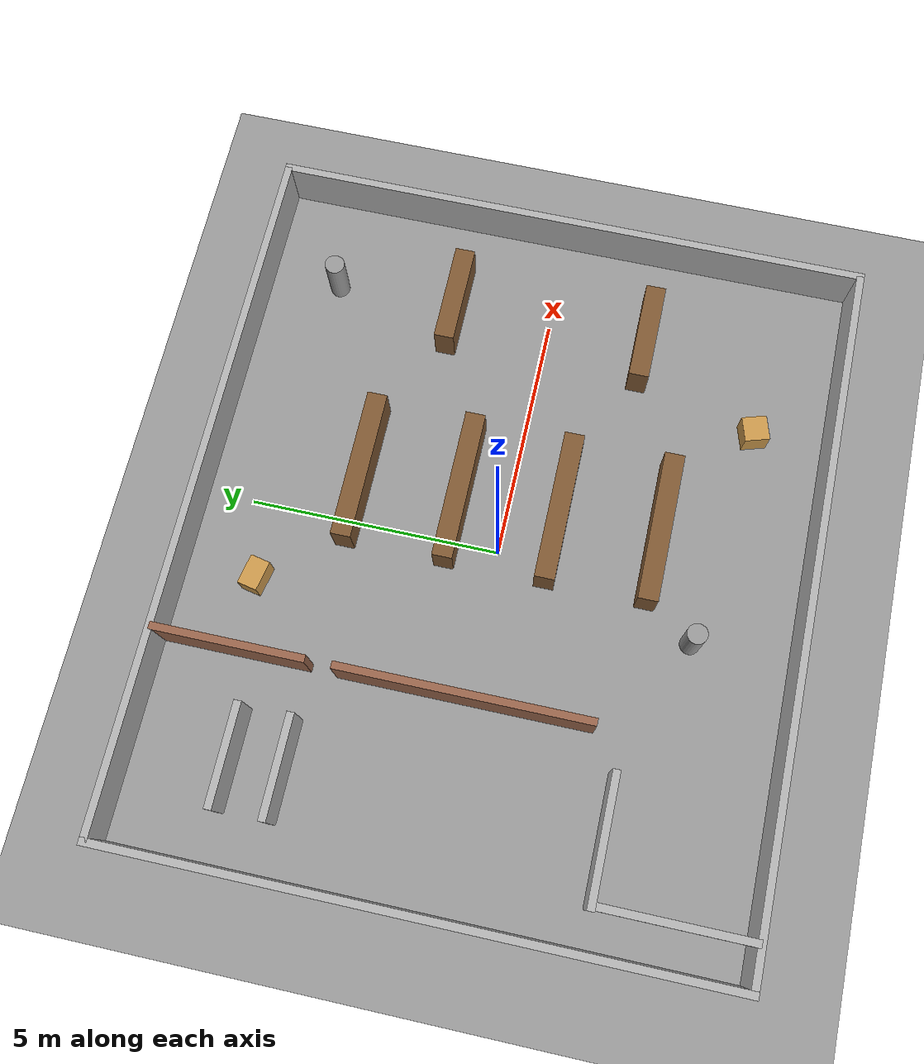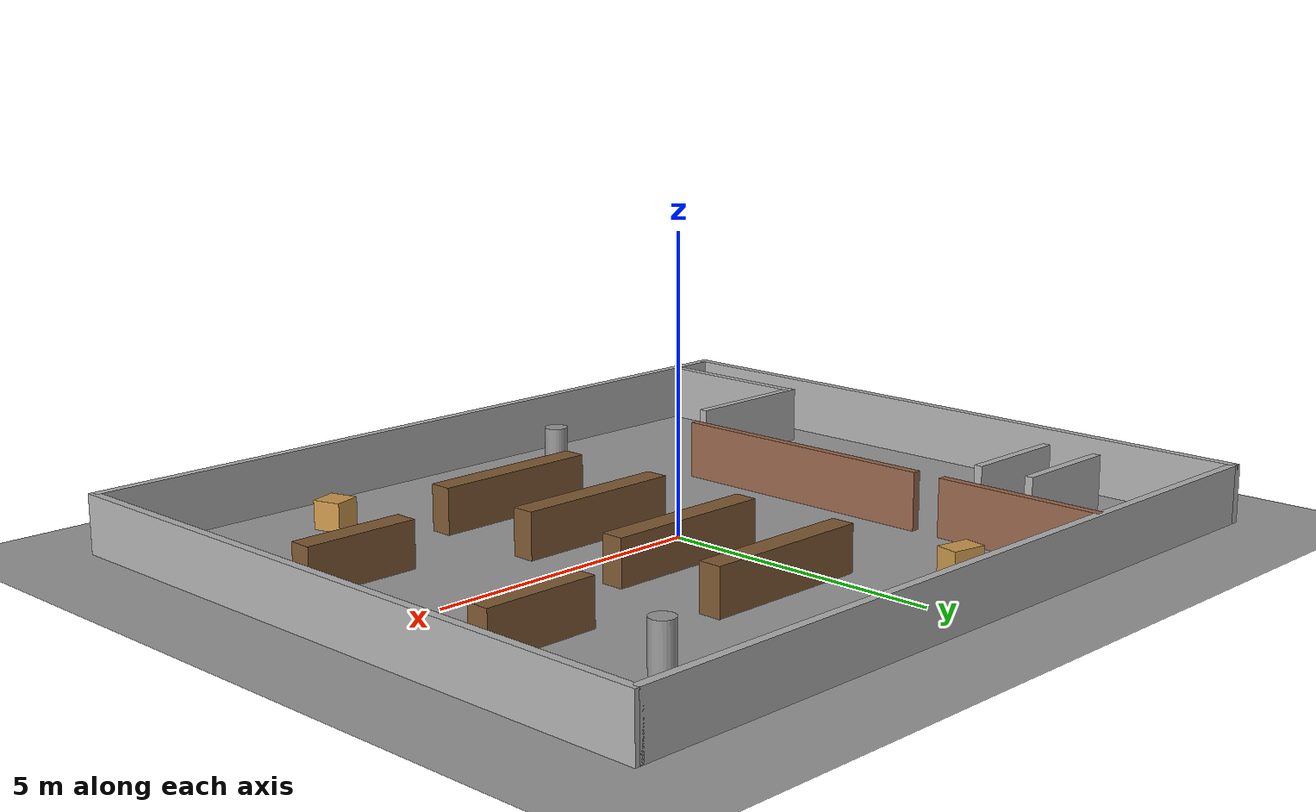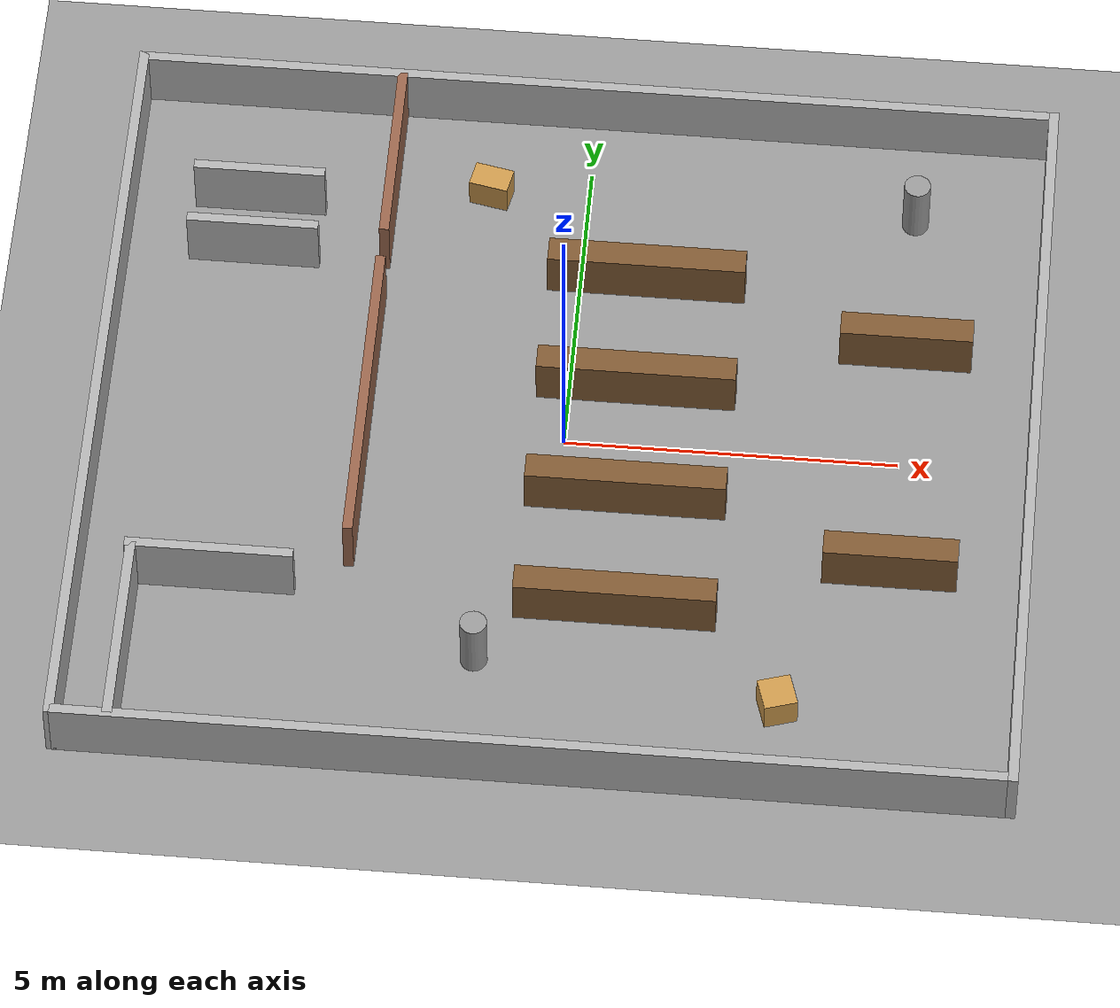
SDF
<?xml version="1.0" ?>
<sdf version="1.9">
  <world name="warehouse">
    <physics name="1ms" type="ignored">
      <max_step_size>0.001</max_step_size>
      <real_time_factor>1.0</real_time_factor>
    </physics>

    <plugin filename="gz-sim-physics-system" name="gz::sim::systems::Physics"/>
    <plugin filename="gz-sim-sensors-system" name="gz::sim::systems::Sensors">
      <render_engine>ogre2</render_engine>
    </plugin>
    <plugin filename="gz-sim-scene-broadcaster-system" name="gz::sim::systems::SceneBroadcaster"/>
    <plugin filename="gz-sim-user-commands-system" name="gz::sim::systems::UserCommands"/>
    <!-- Required for the TurtleBot3 IMU sensor to publish -->
    <plugin filename="gz-sim-imu-system" name="gz::sim::systems::Imu"/>

    <light type="directional" name="sun">
      <cast_shadows>true</cast_shadows>
      <pose>0 0 10 0 0 0</pose>
      <diffuse>0.8 0.8 0.8 1</diffuse>
      <specular>0.2 0.2 0.2 1</specular>
      <attenuation>
        <range>1000</range>
        <constant>0.9</constant>
        <linear>0.01</linear>
        <quadratic>0.001</quadratic>
      </attenuation>
      <direction>-0.5 0.1 -0.9</direction>
    </light>

    <!-- Ground plane -->
    <model name="ground_plane">
      <static>true</static>
      <link name="link">
        <collision name="collision">
          <geometry>
            <plane><normal>0 0 1</normal><size>100 100</size></plane>
          </geometry>
        </collision>
        <visual name="visual">
          <geometry>
            <plane><normal>0 0 1</normal><size>100 100</size></plane>
          </geometry>
          <material>
            <ambient>0.6 0.6 0.6 1</ambient>
            <diffuse>0.6 0.6 0.6 1</diffuse>
          </material>
        </visual>
      </link>
    </model>

    <!-- ==================== OUTER WALLS ==================== -->
    <!-- North wall -->
    <model name="wall_north">
      <static>true</static>
      <pose>0 6 0.5 0 0 0</pose>
      <link name="link">
        <collision name="collision">
          <geometry><box><size>14 0.15 1</size></box></geometry>
        </collision>
        <visual name="visual">
          <geometry><box><size>14 0.15 1</size></box></geometry>
          <material>
            <ambient>0.5 0.5 0.5 1</ambient>
            <diffuse>0.7 0.7 0.7 1</diffuse>
          </material>
        </visual>
      </link>
    </model>

    <!-- South wall -->
    <model name="wall_south">
      <static>true</static>
      <pose>0 -6 0.5 0 0 0</pose>
      <link name="link">
        <collision name="collision">
          <geometry><box><size>14 0.15 1</size></box></geometry>
        </collision>
        <visual name="visual">
          <geometry><box><size>14 0.15 1</size></box></geometry>
          <material>
            <ambient>0.5 0.5 0.5 1</ambient>
            <diffuse>0.7 0.7 0.7 1</diffuse>
          </material>
        </visual>
      </link>
    </model>

    <!-- East wall -->
    <model name="wall_east">
      <static>true</static>
      <pose>7 0 0.5 0 0 0</pose>
      <link name="link">
        <collision name="collision">
          <geometry><box><size>0.15 12.15 1</size></box></geometry>
        </collision>
        <visual name="visual">
          <geometry><box><size>0.15 12.15 1</size></box></geometry>
          <material>
            <ambient>0.5 0.5 0.5 1</ambient>
            <diffuse>0.7 0.7 0.7 1</diffuse>
          </material>
        </visual>
      </link>
    </model>

    <!-- West wall -->
    <model name="wall_west">
      <static>true</static>
      <pose>-7 0 0.5 0 0 0</pose>
      <link name="link">
        <collision name="collision">
          <geometry><box><size>0.15 12.15 1</size></box></geometry>
        </collision>
        <visual name="visual">
          <geometry><box><size>0.15 12.15 1</size></box></geometry>
          <material>
            <ambient>0.5 0.5 0.5 1</ambient>
            <diffuse>0.7 0.7 0.7 1</diffuse>
          </material>
        </visual>
      </link>
    </model>

    <!-- ==================== INTERIOR WALLS / ROOMS ==================== -->
    <!-- Divider wall creating two zones (with doorway gap) -->
    <model name="divider_left">
      <static>true</static>
      <pose>-3 0 0.5 0 0 0</pose>
      <link name="link">
        <collision name="collision">
          <geometry><box><size>0.15 5 1</size></box></geometry>
        </collision>
        <visual name="visual">
          <geometry><box><size>0.15 5 1</size></box></geometry>
          <material>
            <ambient>0.4 0.3 0.2 1</ambient>
            <diffuse>0.6 0.4 0.3 1</diffuse>
          </material>
        </visual>
      </link>
    </model>

    <!-- Upper section of divider (leaving 1.5m doorway) -->
    <model name="divider_upper">
      <static>true</static>
      <pose>-3 4.5 0.5 0 0 0</pose>
      <link name="link">
        <collision name="collision">
          <geometry><box><size>0.15 3 1</size></box></geometry>
        </collision>
        <visual name="visual">
          <geometry><box><size>0.15 3 1</size></box></geometry>
          <material>
            <ambient>0.4 0.3 0.2 1</ambient>
            <diffuse>0.6 0.4 0.3 1</diffuse>
          </material>
        </visual>
      </link>
    </model>

    <!-- ==================== SHELVING UNITS (AISLES) ==================== -->
    <!-- Shelf row 1 -->
    <model name="shelf_1a">
      <static>true</static>
      <pose>1 -3 0.4 0 0 0</pose>
      <link name="link">
        <collision name="collision">
          <geometry><box><size>3 0.4 0.8</size></box></geometry>
        </collision>
        <visual name="visual">
          <geometry><box><size>3 0.4 0.8</size></box></geometry>
          <material>
            <ambient>0.3 0.2 0.1 1</ambient>
            <diffuse>0.5 0.35 0.2 1</diffuse>
          </material>
        </visual>
      </link>
    </model>

    <!-- Shelf row 2 -->
    <model name="shelf_2a">
      <static>true</static>
      <pose>1 -1 0.4 0 0 0</pose>
      <link name="link">
        <collision name="collision">
          <geometry><box><size>3 0.4 0.8</size></box></geometry>
        </collision>
        <visual name="visual">
          <geometry><box><size>3 0.4 0.8</size></box></geometry>
          <material>
            <ambient>0.3 0.2 0.1 1</ambient>
            <diffuse>0.5 0.35 0.2 1</diffuse>
          </material>
        </visual>
      </link>
    </model>

    <!-- Shelf row 3 -->
    <model name="shelf_3a">
      <static>true</static>
      <pose>1 1 0.4 0 0 0</pose>
      <link name="link">
        <collision name="collision">
          <geometry><box><size>3 0.4 0.8</size></box></geometry>
        </collision>
        <visual name="visual">
          <geometry><box><size>3 0.4 0.8</size></box></geometry>
          <material>
            <ambient>0.3 0.2 0.1 1</ambient>
            <diffuse>0.5 0.35 0.2 1</diffuse>
          </material>
        </visual>
      </link>
    </model>

    <!-- Shelf row 4 -->
    <model name="shelf_4a">
      <static>true</static>
      <pose>1 3 0.4 0 0 0</pose>
      <link name="link">
        <collision name="collision">
          <geometry><box><size>3 0.4 0.8</size></box></geometry>
        </collision>
        <visual name="visual">
          <geometry><box><size>3 0.4 0.8</size></box></geometry>
          <material>
            <ambient>0.3 0.2 0.1 1</ambient>
            <diffuse>0.5 0.35 0.2 1</diffuse>
          </material>
        </visual>
      </link>
    </model>

    <!-- Right-side shelves (second column) -->
    <model name="shelf_5a">
      <static>true</static>
      <pose>5 -2 0.4 0 0 0</pose>
      <link name="link">
        <collision name="collision">
          <geometry><box><size>2 0.4 0.8</size></box></geometry>
        </collision>
        <visual name="visual">
          <geometry><box><size>2 0.4 0.8</size></box></geometry>
          <material>
            <ambient>0.3 0.2 0.1 1</ambient>
            <diffuse>0.5 0.35 0.2 1</diffuse>
          </material>
        </visual>
      </link>
    </model>

    <model name="shelf_6a">
      <static>true</static>
      <pose>5 2 0.4 0 0 0</pose>
      <link name="link">
        <collision name="collision">
          <geometry><box><size>2 0.4 0.8</size></box></geometry>
        </collision>
        <visual name="visual">
          <geometry><box><size>2 0.4 0.8</size></box></geometry>
          <material>
            <ambient>0.3 0.2 0.1 1</ambient>
            <diffuse>0.5 0.35 0.2 1</diffuse>
          </material>
        </visual>
      </link>
    </model>

    <!-- ==================== OBSTACLES ==================== -->
    <!-- Dead-end corridor -->
    <model name="dead_end_wall">
      <static>true</static>
      <pose>-5 -3 0.5 0 0 0</pose>
      <link name="link">
        <collision name="collision">
          <geometry><box><size>2.5 0.15 1</size></box></geometry>
        </collision>
        <visual name="visual">
          <geometry><box><size>2.5 0.15 1</size></box></geometry>
          <material>
            <ambient>0.5 0.5 0.5 1</ambient>
            <diffuse>0.7 0.7 0.7 1</diffuse>
          </material>
        </visual>
      </link>
    </model>

    <!-- Dead-end side wall -->
    <model name="dead_end_side">
      <static>true</static>
      <pose>-6.15 -4.5 0.5 0 0 0</pose>
      <link name="link">
        <collision name="collision">
          <geometry><box><size>0.15 3 1</size></box></geometry>
        </collision>
        <visual name="visual">
          <geometry><box><size>0.15 3 1</size></box></geometry>
          <material>
            <ambient>0.5 0.5 0.5 1</ambient>
            <diffuse>0.7 0.7 0.7 1</diffuse>
          </material>
        </visual>
      </link>
    </model>

    <!-- Narrow passage walls -->
    <model name="narrow_left">
      <static>true</static>
      <pose>-5 3 0.5 0 0 0</pose>
      <link name="link">
        <collision name="collision">
          <geometry><box><size>2 0.15 1</size></box></geometry>
        </collision>
        <visual name="visual">
          <geometry><box><size>2 0.15 1</size></box></geometry>
          <material>
            <ambient>0.5 0.5 0.5 1</ambient>
            <diffuse>0.7 0.7 0.7 1</diffuse>
          </material>
        </visual>
      </link>
    </model>

    <model name="narrow_right">
      <static>true</static>
      <pose>-5 4 0.5 0 0 0</pose>
      <link name="link">
        <collision name="collision">
          <geometry><box><size>2 0.15 1</size></box></geometry>
        </collision>
        <visual name="visual">
          <geometry><box><size>2 0.15 1</size></box></geometry>
          <material>
            <ambient>0.5 0.5 0.5 1</ambient>
            <diffuse>0.7 0.7 0.7 1</diffuse>
          </material>
        </visual>
      </link>
    </model>

    <!-- Random box obstacles -->
    <model name="crate_1">
      <static>true</static>
      <pose>3.5 -4.5 0.25 0 0 0.3</pose>
      <link name="link">
        <collision name="collision">
          <geometry><box><size>0.5 0.5 0.5</size></box></geometry>
        </collision>
        <visual name="visual">
          <geometry><box><size>0.5 0.5 0.5</size></box></geometry>
          <material>
            <ambient>0.6 0.5 0.2 1</ambient>
            <diffuse>0.8 0.6 0.3 1</diffuse>
          </material>
        </visual>
      </link>
    </model>

    <model name="crate_2">
      <static>true</static>
      <pose>-1.5 4.5 0.25 0 0 -0.2</pose>
      <link name="link">
        <collision name="collision">
          <geometry><box><size>0.6 0.4 0.5</size></box></geometry>
        </collision>
        <visual name="visual">
          <geometry><box><size>0.6 0.4 0.5</size></box></geometry>
          <material>
            <ambient>0.6 0.5 0.2 1</ambient>
            <diffuse>0.8 0.6 0.3 1</diffuse>
          </material>
        </visual>
      </link>
    </model>

    <!-- Cylinder obstacle (pillar) -->
    <model name="pillar_1">
      <static>true</static>
      <pose>-1 -4 0.5 0 0 0</pose>
      <link name="link">
        <collision name="collision">
          <geometry><cylinder><radius>0.2</radius><length>1.0</length></cylinder></geometry>
        </collision>
        <visual name="visual">
          <geometry><cylinder><radius>0.2</radius><length>1.0</length></cylinder></geometry>
          <material>
            <ambient>0.4 0.4 0.4 1</ambient>
            <diffuse>0.6 0.6 0.6 1</diffuse>
          </material>
        </visual>
      </link>
    </model>

    <model name="pillar_2">
      <static>true</static>
      <pose>5 4.5 0.5 0 0 0</pose>
      <link name="link">
        <collision name="collision">
          <geometry><cylinder><radius>0.2</radius><length>1.0</length></cylinder></geometry>
        </collision>
        <visual name="visual">
          <geometry><cylinder><radius>0.2</radius><length>1.0</length></cylinder></geometry>
          <material>
            <ambient>0.4 0.4 0.4 1</ambient>
            <diffuse>0.6 0.6 0.6 1</diffuse>
          </material>
        </visual>
      </link>
    </model>

  </world>
</sdf>
